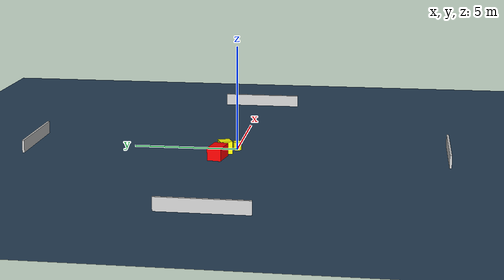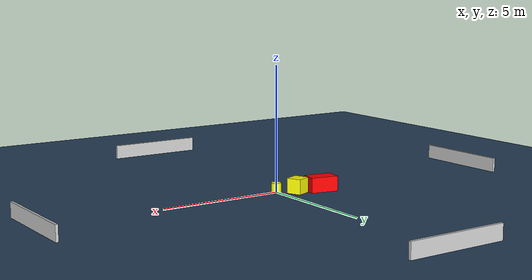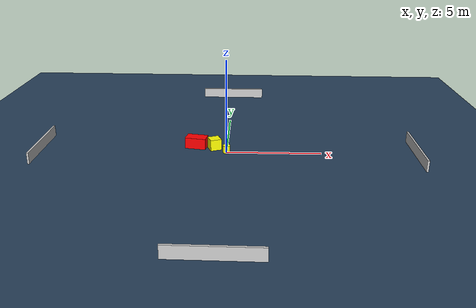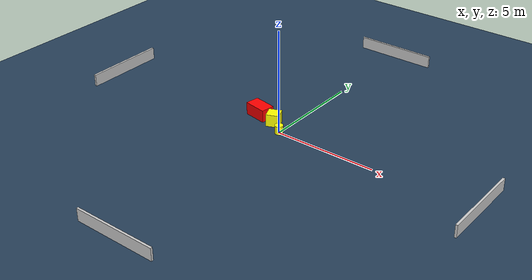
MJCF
<?xml version="1.0" ?>
<mujoco model="generated_environment">
  <option timestep="0.01" integrator="RK4" cone="elliptic"/>
  <default>
    <geom density="1"/>
  </default>
  <asset>
    <texture builtin="gradient" height="3072" name="skybox" rgb1="0.3 0.5 0.7" rgb2="0 0 0" type="skybox" width="512"/>
    <texture builtin="checker" height="300" name="groundplane" rgb1="0.2 0.3 0.4" rgb2="0.1 0.2 0.3" type="2d" width="300"/>
    <material name="groundplane" reflectance="0.2" texrepeat="5 5" texture="groundplane"/>
  </asset>
  <worldbody>
    <light dir="0 0 -1" directional="true" pos="0 0 1.5"/>
    <geom condim="3" friction="0.5 0.005 0.001" material="groundplane" name="floor" pos="0 0 0" size="0 0 0.05" type="plane"/>
    <body name="walls">
      <geom name="wall_1" condim="4" pos="-10.0 0.0 0.3" rgba="0.800000011920929 0.800000011920929 0.800000011920929 1.0" size="0.05 2.0 0.3" type="box"/>
      <geom name="wall_2" condim="4" pos="10.0 0.0 0.3" rgba="0.800000011920929 0.800000011920929 0.800000011920929 1.0" size="0.05 2.0 0.3" type="box"/>
      <geom name="wall_3" condim="4" pos="0.0 -10.0 0.3" rgba="0.800000011920929 0.800000011920929 0.800000011920929 1.0" size="2.0 0.05 0.3" type="box"/>
      <geom name="wall_4" condim="4" pos="0.0 10.0 0.3" rgba="0.800000011920929 0.800000011920929 0.800000011920929 1.0" size="2.0 0.05 0.3" type="box"/>
    </body>
    <body name="robot">
      <joint name="joint_x" type="slide" pos="0 0 0" axis="1 0 0"/>
      <joint name="joint_y" type="slide" pos="0 0 0" axis="0 1 0"/>
      <geom name="robot" type="cylinder" pos="0.0 0.0 0.2" size="0.2 0.2 0.0" mass="5.0" friction="1.0 0.005 0.0001" condim="4" rgba="1.0 1.0 0.0 1.0"/>
    </body>
    <body name="obstacle_1_movable">
      <geom name="obstacle_1_movable" condim="4" pos="-0.6767054134640405 0.49675784736042083 0.3" euler="0 0 202.52095493307212" friction="0.0 0.005 0.001" rgba="1.0 1.0 0.0 1.0" size="0.3087948201586801 0.2952152494584178 0.3" type="box" mass="0.1"/>
      <joint type="free"/>
    </body>
    <body name="obstacle_2_static">
      <geom name="obstacle_2_static" condim="4" pos="-1.6667810610154454 0.6980149563527128 0.3" euler="0 0 169.93850047745855" friction="0.0 0.005 0.001" rgba="1.0 0.0 0.0 1.0" size="0.5610660121315946 0.3323391279162935 0.3" type="box"/>
    </body>
  </worldbody>
  <actuator>
    <motor name="actuator_x" joint="joint_x" gear="1" ctrlrange="-1 1"/>
    <motor name="actuator_y" joint="joint_y" gear="1" ctrlrange="-1 1"/>
  </actuator>
</mujoco>
